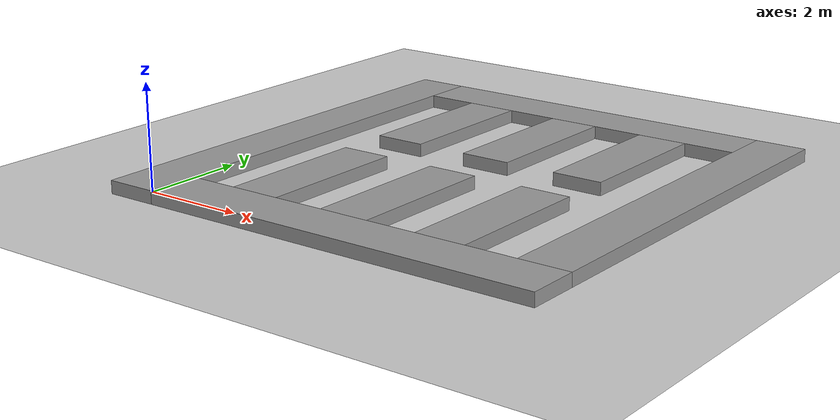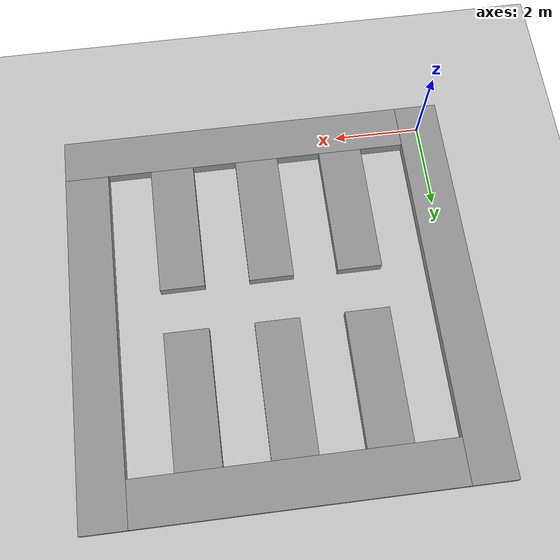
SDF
<sdf version="1.4">
  <world name="default">

    <scene>
      <ambient>0.4 0.4 0.4 1</ambient>
      <background>0.7 0.7 0.7 1</background>
      <shadows>true</shadows>
    </scene>

    <!-- A global light source -->
    <include>
      <uri>model://sun</uri>
    </include>

    <!-- A ground plane -->
    <include>
      <uri>model://ground_plane</uri>
    </include>

	<!-- Maze -->
    <include>
      <uri>model://small_lines</uri>
    </include>

    <physics type="ode">
      <real_time_update_rate>1000.0</real_time_update_rate>
      <max_step_size>0.001</max_step_size>
      <real_time_factor>1</real_time_factor>
      <ode>
        <solver>
          <type>quick</type>
          <iters>150</iters>
          <precon_iters>0</precon_iters>
          <sor>1.400000</sor>
          <use_dynamic_moi_rescaling>1</use_dynamic_moi_rescaling>
        </solver>
        <constraints>
          <cfm>0.00001</cfm>
          <erp>0.2</erp>
          <contact_max_correcting_vel>2000.000000</contact_max_correcting_vel>
          <contact_surface_layer>0.01000</contact_surface_layer>
        </constraints>
      </ode>
    </physics>
  </world>

</sdf>

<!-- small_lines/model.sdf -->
<sdf version='1.7'>
  <model name='small_lines'>
    <pose>4 4 0 0 -0 0</pose>
    <link name='Wall_0'>
      <collision name='Wall_0_Collision'>
        <geometry>
          <box>
            <size>9 1 0.25</size>
          </box>
        </geometry>
        <pose>0 0 0.125 0 -0 0</pose>
      </collision>
      <visual name='Wall_0_Visual'>
        <pose>0 0 0.125 0 -0 0</pose>
        <geometry>
          <box>
            <size>9 1 0.25</size>
          </box>
        </geometry>
        <material>
          <script>
            <uri>file://media/materials/scripts/gazebo.material</uri>
            <name>Gazebo/Grey</name>
          </script>
          <ambient>1 1 1 1</ambient>
        </material>
        <meta>
          <layer>0</layer>
        </meta>
      </visual>
      <pose>-4 0 0 0 -0 1.5708</pose>
    </link>
    <link name='Wall_10'>
      <collision name='Wall_10_Collision'>
        <geometry>
          <box>
            <size>3 1 0.25</size>
          </box>
        </geometry>
        <pose>0 0 0.125 0 -0 0</pose>
      </collision>
      <visual name='Wall_10_Visual'>
        <pose>0 0 0.125 0 -0 0</pose>
        <geometry>
          <box>
            <size>3 1 0.25</size>
          </box>
        </geometry>
        <material>
          <script>
            <uri>file://media/materials/scripts/gazebo.material</uri>
            <name>Gazebo/Grey</name>
          </script>
          <ambient>1 1 1 1</ambient>
        </material>
        <meta>
          <layer>0</layer>
        </meta>
      </visual>
      <pose>-2 -2 0 0 -0 1.5708</pose>
    </link>
    <link name='Wall_12'>
      <collision name='Wall_12_Collision'>
        <geometry>
          <box>
            <size>3 1 0.25</size>
          </box>
        </geometry>
        <pose>0 0 0.125 0 -0 0</pose>
      </collision>
      <visual name='Wall_12_Visual'>
        <pose>0 0 0.125 0 -0 0</pose>
        <geometry>
          <box>
            <size>3 1 0.25</size>
          </box>
        </geometry>
        <material>
          <script>
            <uri>file://media/materials/scripts/gazebo.material</uri>
            <name>Gazebo/Grey</name>
          </script>
          <ambient>1 1 1 1</ambient>
        </material>
        <meta>
          <layer>0</layer>
        </meta>
      </visual>
      <pose>-0 2 0 0 -0 1.5708</pose>
    </link>
    <link name='Wall_14'>
      <collision name='Wall_14_Collision'>
        <geometry>
          <box>
            <size>3 1 0.25</size>
          </box>
        </geometry>
        <pose>0 0 0.125 0 -0 0</pose>
      </collision>
      <visual name='Wall_14_Visual'>
        <pose>0 0 0.125 0 -0 0</pose>
        <geometry>
          <box>
            <size>3 1 0.25</size>
          </box>
        </geometry>
        <material>
          <script>
            <uri>file://media/materials/scripts/gazebo.material</uri>
            <name>Gazebo/Grey</name>
          </script>
          <ambient>1 1 1 1</ambient>
        </material>
        <meta>
          <layer>0</layer>
        </meta>
      </visual>
      <pose>2 2 0 0 -0 1.5708</pose>
    </link>
    <link name='Wall_16'>
      <collision name='Wall_16_Collision'>
        <geometry>
          <box>
            <size>3 1 0.25</size>
          </box>
        </geometry>
        <pose>0 0 0.125 0 -0 0</pose>
      </collision>
      <visual name='Wall_16_Visual'>
        <pose>0 0 0.125 0 -0 0</pose>
        <geometry>
          <box>
            <size>3 1 0.25</size>
          </box>
        </geometry>
        <material>
          <script>
            <uri>file://media/materials/scripts/gazebo.material</uri>
            <name>Gazebo/Grey</name>
          </script>
          <ambient>1 1 1 1</ambient>
        </material>
        <meta>
          <layer>0</layer>
        </meta>
      </visual>
      <pose>-0 -2 0 0 -0 1.5708</pose>
    </link>
    <link name='Wall_18'>
      <collision name='Wall_18_Collision'>
        <geometry>
          <box>
            <size>3 1 0.25</size>
          </box>
        </geometry>
        <pose>0 0 0.125 0 -0 0</pose>
      </collision>
      <visual name='Wall_18_Visual'>
        <pose>0 0 0.125 0 -0 0</pose>
        <geometry>
          <box>
            <size>3 1 0.25</size>
          </box>
        </geometry>
        <material>
          <script>
            <uri>file://media/materials/scripts/gazebo.material</uri>
            <name>Gazebo/Grey</name>
          </script>
          <ambient>1 1 1 1</ambient>
        </material>
        <meta>
          <layer>0</layer>
        </meta>
      </visual>
      <pose>2 -2 0 0 -0 1.5708</pose>
    </link>
    <link name='Wall_2'>
      <collision name='Wall_2_Collision'>
        <geometry>
          <box>
            <size>7 1 0.25</size>
          </box>
        </geometry>
        <pose>0 0 0.125 0 -0 0</pose>
      </collision>
      <visual name='Wall_2_Visual'>
        <pose>0 0 0.125 0 -0 0</pose>
        <geometry>
          <box>
            <size>7 1 0.25</size>
          </box>
        </geometry>
        <material>
          <script>
            <uri>file://media/materials/scripts/gazebo.material</uri>
            <name>Gazebo/Grey</name>
          </script>
          <ambient>1 1 1 1</ambient>
        </material>
        <meta>
          <layer>0</layer>
        </meta>
      </visual>
      <pose>-0 4 0 0 -0 0</pose>
    </link>
    <link name='Wall_4'>
      <collision name='Wall_4_Collision'>
        <geometry>
          <box>
            <size>8 1 0.25</size>
          </box>
        </geometry>
        <pose>0 0 0.125 0 -0 0</pose>
      </collision>
      <visual name='Wall_4_Visual'>
        <pose>0 0 0.125 0 -0 0</pose>
        <geometry>
          <box>
            <size>8 1 0.25</size>
          </box>
        </geometry>
        <material>
          <script>
            <uri>file://media/materials/scripts/gazebo.material</uri>
            <name>Gazebo/Grey</name>
          </script>
          <ambient>1 1 1 1</ambient>
        </material>
        <meta>
          <layer>0</layer>
        </meta>
      </visual>
      <pose>0.5 -4 0 0 -0 0</pose>
    </link>
    <link name='Wall_6'>
      <collision name='Wall_6_Collision'>
        <geometry>
          <box>
            <size>8 1 0.25</size>
          </box>
        </geometry>
        <pose>0 0 0.125 0 -0 0</pose>
      </collision>
      <visual name='Wall_6_Visual'>
        <pose>0 0 0.125 0 -0 0</pose>
        <geometry>
          <box>
            <size>8 1 0.25</size>
          </box>
        </geometry>
        <material>
          <script>
            <uri>file://media/materials/scripts/gazebo.material</uri>
            <name>Gazebo/Grey</name>
          </script>
          <ambient>1 1 1 1</ambient>
        </material>
        <meta>
          <layer>0</layer>
        </meta>
      </visual>
      <pose>4 0.5 0 0 -0 1.5708</pose>
    </link>
    <link name='Wall_8'>
      <collision name='Wall_8_Collision'>
        <geometry>
          <box>
            <size>3 1 0.25</size>
          </box>
        </geometry>
        <pose>0 0 0.125 0 -0 0</pose>
      </collision>
      <visual name='Wall_8_Visual'>
        <pose>0 0 0.125 0 -0 0</pose>
        <geometry>
          <box>
            <size>3 1 0.25</size>
          </box>
        </geometry>
        <material>
          <script>
            <uri>file://media/materials/scripts/gazebo.material</uri>
            <name>Gazebo/Grey</name>
          </script>
          <ambient>1 1 1 1</ambient>
        </material>
        <meta>
          <layer>0</layer>
        </meta>
      </visual>
      <pose>-2 2 0 0 -0 -1.5708</pose>
    </link>
    <static>1</static>
  </model>
</sdf>
